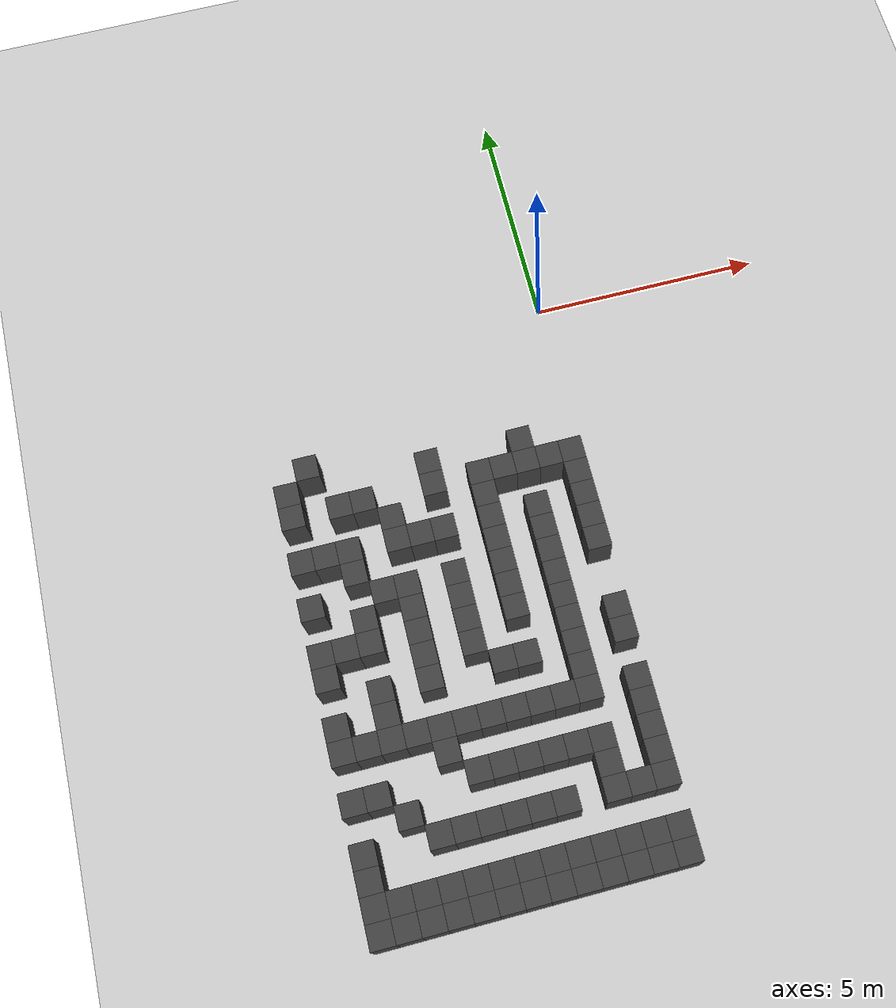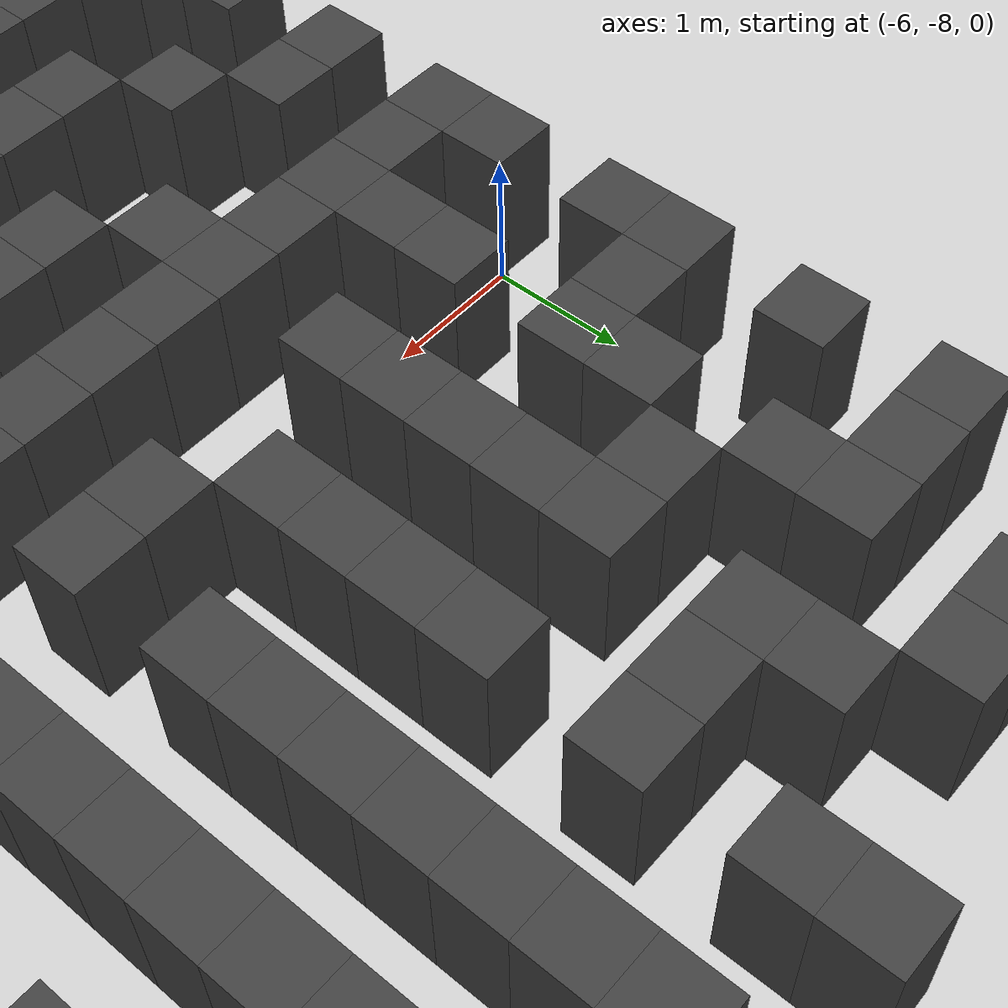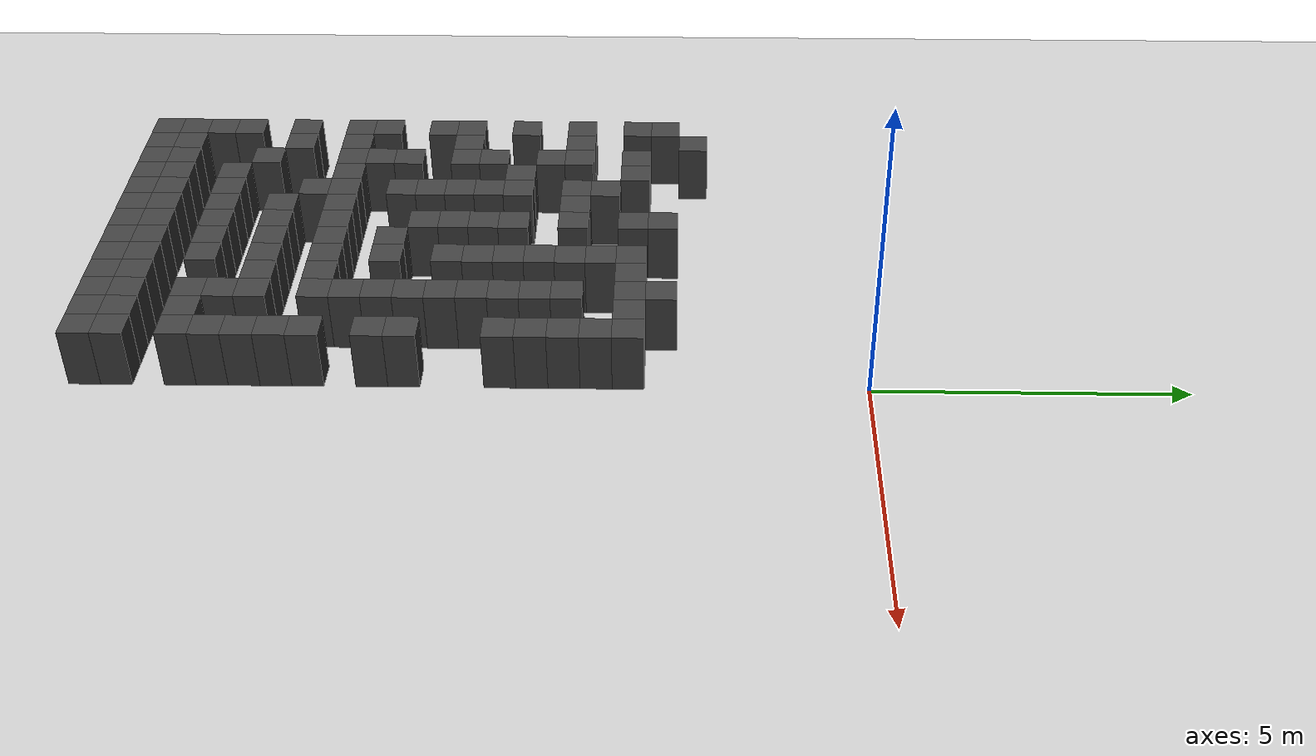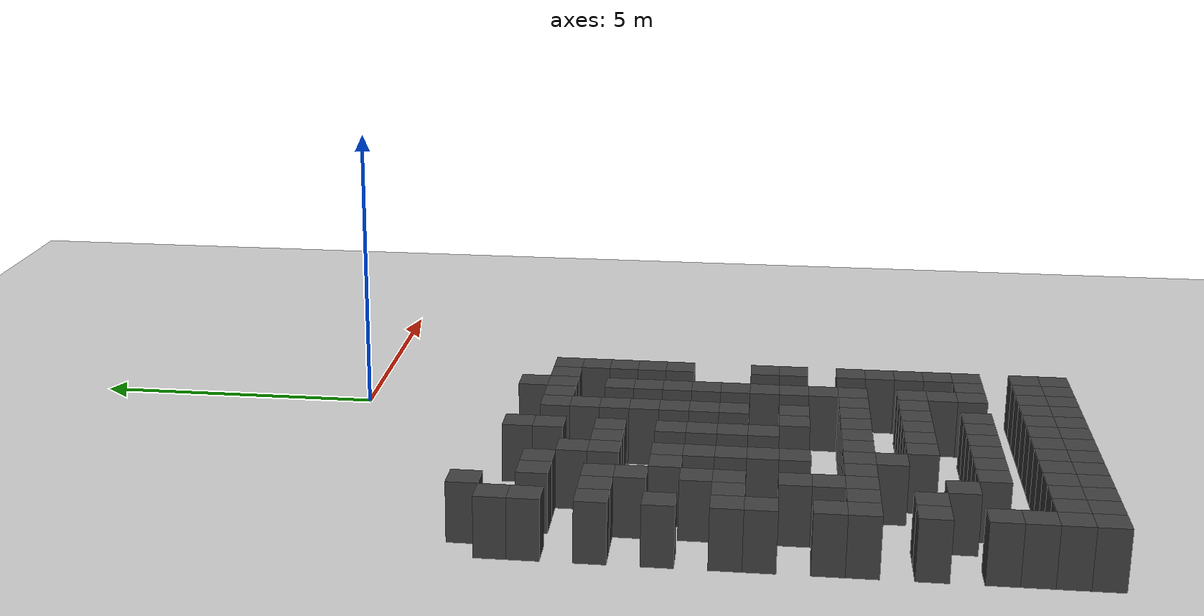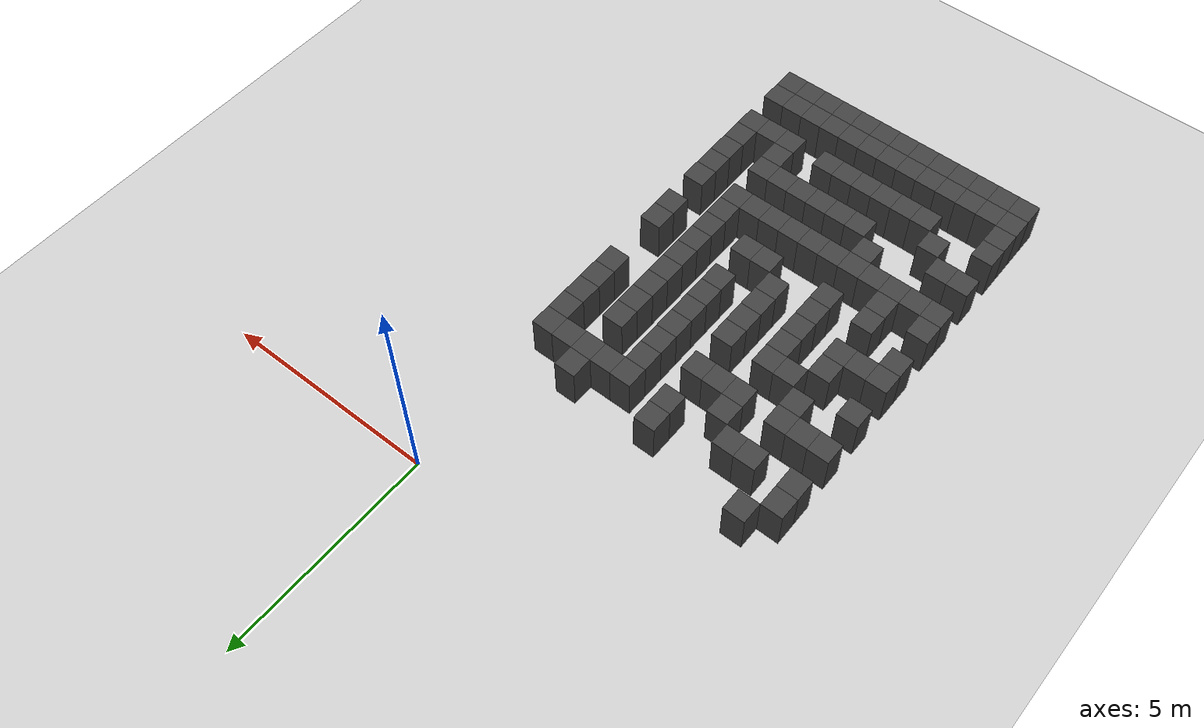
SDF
<sdf version="1.7">
 <world name="map_16783">
  <model name="ground_plane">
   <static>true</static>
   <link name="link">
    <collision name="collision">
     <geometry><plane><normal>0 0 1</normal><size>200 200</size></plane></geometry>
    </collision>
    <visual name="visual">
     <geometry><plane><normal>0 0 1</normal><size>200 200</size></plane></geometry>
     <material><ambient>0.8 0.8 0.8 1</ambient><diffuse>0.8 0.8 0.8 1</diffuse></material>
    </visual>
   </link>
  </model>
  <model name="maze_environment">
   <static>true</static>
   <link name="wall_731">
    <pose>-5.750 -2.750 0.500 0 0 0</pose>
    <collision name="col"><geometry><box><size>0.5 0.5 1.0</size></box></geometry></collision>
    <visual name="vis">
     <geometry><box><size>0.5 0.5 1.0</size></box></geometry>
     <material><ambient>0.15 0.15 0.15 1</ambient><diffuse>0.25 0.25 0.25 1</diffuse></material>
    </visual>
   </link>
   <link name="wall_758">
    <pose>-6.250 -3.250 0.500 0 0 0</pose>
    <collision name="col"><geometry><box><size>0.5 0.5 1.0</size></box></geometry></collision>
    <visual name="vis">
     <geometry><box><size>0.5 0.5 1.0</size></box></geometry>
     <material><ambient>0.15 0.15 0.15 1</ambient><diffuse>0.25 0.25 0.25 1</diffuse></material>
    </visual>
   </link>
   <link name="wall_759">
    <pose>-3.250 -3.250 0.500 0 0 0</pose>
    <collision name="col"><geometry><box><size>0.5 0.5 1.0</size></box></geometry></collision>
    <visual name="vis">
     <geometry><box><size>0.5 0.5 1.0</size></box></geometry>
     <material><ambient>0.15 0.15 0.15 1</ambient><diffuse>0.25 0.25 0.25 1</diffuse></material>
    </visual>
   </link>
   <link name="wall_760">
    <pose>-1.250 -3.250 0.500 0 0 0</pose>
    <collision name="col"><geometry><box><size>0.5 0.5 1.0</size></box></geometry></collision>
    <visual name="vis">
     <geometry><box><size>0.5 0.5 1.0</size></box></geometry>
     <material><ambient>0.15 0.15 0.15 1</ambient><diffuse>0.25 0.25 0.25 1</diffuse></material>
    </visual>
   </link>
   <link name="wall_777">
    <pose>-6.250 -3.750 0.500 0 0 0</pose>
    <collision name="col"><geometry><box><size>0.5 0.5 1.0</size></box></geometry></collision>
    <visual name="vis">
     <geometry><box><size>0.5 0.5 1.0</size></box></geometry>
     <material><ambient>0.15 0.15 0.15 1</ambient><diffuse>0.25 0.25 0.25 1</diffuse></material>
    </visual>
   </link>
   <link name="wall_778">
    <pose>-5.250 -3.750 0.500 0 0 0</pose>
    <collision name="col"><geometry><box><size>0.5 0.5 1.0</size></box></geometry></collision>
    <visual name="vis">
     <geometry><box><size>0.5 0.5 1.0</size></box></geometry>
     <material><ambient>0.15 0.15 0.15 1</ambient><diffuse>0.25 0.25 0.25 1</diffuse></material>
    </visual>
   </link>
   <link name="wall_779">
    <pose>-4.750 -3.750 0.500 0 0 0</pose>
    <collision name="col"><geometry><box><size>0.5 0.5 1.0</size></box></geometry></collision>
    <visual name="vis">
     <geometry><box><size>0.5 0.5 1.0</size></box></geometry>
     <material><ambient>0.15 0.15 0.15 1</ambient><diffuse>0.25 0.25 0.25 1</diffuse></material>
    </visual>
   </link>
   <link name="wall_780">
    <pose>-3.250 -3.750 0.500 0 0 0</pose>
    <collision name="col"><geometry><box><size>0.5 0.5 1.0</size></box></geometry></collision>
    <visual name="vis">
     <geometry><box><size>0.5 0.5 1.0</size></box></geometry>
     <material><ambient>0.15 0.15 0.15 1</ambient><diffuse>0.25 0.25 0.25 1</diffuse></material>
    </visual>
   </link>
   <link name="wall_781">
    <pose>-2.250 -3.750 0.500 0 0 0</pose>
    <collision name="col"><geometry><box><size>0.5 0.5 1.0</size></box></geometry></collision>
    <visual name="vis">
     <geometry><box><size>0.5 0.5 1.0</size></box></geometry>
     <material><ambient>0.15 0.15 0.15 1</ambient><diffuse>0.25 0.25 0.25 1</diffuse></material>
    </visual>
   </link>
   <link name="wall_782">
    <pose>-1.750 -3.750 0.500 0 0 0</pose>
    <collision name="col"><geometry><box><size>0.5 0.5 1.0</size></box></geometry></collision>
    <visual name="vis">
     <geometry><box><size>0.5 0.5 1.0</size></box></geometry>
     <material><ambient>0.15 0.15 0.15 1</ambient><diffuse>0.25 0.25 0.25 1</diffuse></material>
    </visual>
   </link>
   <link name="wall_783">
    <pose>-1.250 -3.750 0.500 0 0 0</pose>
    <collision name="col"><geometry><box><size>0.5 0.5 1.0</size></box></geometry></collision>
    <visual name="vis">
     <geometry><box><size>0.5 0.5 1.0</size></box></geometry>
     <material><ambient>0.15 0.15 0.15 1</ambient><diffuse>0.25 0.25 0.25 1</diffuse></material>
    </visual>
   </link>
   <link name="wall_784">
    <pose>-0.750 -3.750 0.500 0 0 0</pose>
    <collision name="col"><geometry><box><size>0.5 0.5 1.0</size></box></geometry></collision>
    <visual name="vis">
     <geometry><box><size>0.5 0.5 1.0</size></box></geometry>
     <material><ambient>0.15 0.15 0.15 1</ambient><diffuse>0.25 0.25 0.25 1</diffuse></material>
    </visual>
   </link>
   <link name="wall_785">
    <pose>-0.250 -3.750 0.500 0 0 0</pose>
    <collision name="col"><geometry><box><size>0.5 0.5 1.0</size></box></geometry></collision>
    <visual name="vis">
     <geometry><box><size>0.5 0.5 1.0</size></box></geometry>
     <material><ambient>0.15 0.15 0.15 1</ambient><diffuse>0.25 0.25 0.25 1</diffuse></material>
    </visual>
   </link>
   <link name="wall_805">
    <pose>-4.250 -4.250 0.500 0 0 0</pose>
    <collision name="col"><geometry><box><size>0.5 0.5 1.0</size></box></geometry></collision>
    <visual name="vis">
     <geometry><box><size>0.5 0.5 1.0</size></box></geometry>
     <material><ambient>0.15 0.15 0.15 1</ambient><diffuse>0.25 0.25 0.25 1</diffuse></material>
    </visual>
   </link>
   <link name="wall_806">
    <pose>-2.250 -4.250 0.500 0 0 0</pose>
    <collision name="col"><geometry><box><size>0.5 0.5 1.0</size></box></geometry></collision>
    <visual name="vis">
     <geometry><box><size>0.5 0.5 1.0</size></box></geometry>
     <material><ambient>0.15 0.15 0.15 1</ambient><diffuse>0.25 0.25 0.25 1</diffuse></material>
    </visual>
   </link>
   <link name="wall_807">
    <pose>-0.250 -4.250 0.500 0 0 0</pose>
    <collision name="col"><geometry><box><size>0.5 0.5 1.0</size></box></geometry></collision>
    <visual name="vis">
     <geometry><box><size>0.5 0.5 1.0</size></box></geometry>
     <material><ambient>0.15 0.15 0.15 1</ambient><diffuse>0.25 0.25 0.25 1</diffuse></material>
    </visual>
   </link>
   <link name="wall_825">
    <pose>-6.250 -4.750 0.500 0 0 0</pose>
    <collision name="col"><geometry><box><size>0.5 0.5 1.0</size></box></geometry></collision>
    <visual name="vis">
     <geometry><box><size>0.5 0.5 1.0</size></box></geometry>
     <material><ambient>0.15 0.15 0.15 1</ambient><diffuse>0.25 0.25 0.25 1</diffuse></material>
    </visual>
   </link>
   <link name="wall_826">
    <pose>-5.750 -4.750 0.500 0 0 0</pose>
    <collision name="col"><geometry><box><size>0.5 0.5 1.0</size></box></geometry></collision>
    <visual name="vis">
     <geometry><box><size>0.5 0.5 1.0</size></box></geometry>
     <material><ambient>0.15 0.15 0.15 1</ambient><diffuse>0.25 0.25 0.25 1</diffuse></material>
    </visual>
   </link>
   <link name="wall_827">
    <pose>-5.250 -4.750 0.500 0 0 0</pose>
    <collision name="col"><geometry><box><size>0.5 0.5 1.0</size></box></geometry></collision>
    <visual name="vis">
     <geometry><box><size>0.5 0.5 1.0</size></box></geometry>
     <material><ambient>0.15 0.15 0.15 1</ambient><diffuse>0.25 0.25 0.25 1</diffuse></material>
    </visual>
   </link>
   <link name="wall_828">
    <pose>-4.250 -4.750 0.500 0 0 0</pose>
    <collision name="col"><geometry><box><size>0.5 0.5 1.0</size></box></geometry></collision>
    <visual name="vis">
     <geometry><box><size>0.5 0.5 1.0</size></box></geometry>
     <material><ambient>0.15 0.15 0.15 1</ambient><diffuse>0.25 0.25 0.25 1</diffuse></material>
    </visual>
   </link>
   <link name="wall_829">
    <pose>-3.750 -4.750 0.500 0 0 0</pose>
    <collision name="col"><geometry><box><size>0.5 0.5 1.0</size></box></geometry></collision>
    <visual name="vis">
     <geometry><box><size>0.5 0.5 1.0</size></box></geometry>
     <material><ambient>0.15 0.15 0.15 1</ambient><diffuse>0.25 0.25 0.25 1</diffuse></material>
    </visual>
   </link>
   <link name="wall_830">
    <pose>-3.250 -4.750 0.500 0 0 0</pose>
    <collision name="col"><geometry><box><size>0.5 0.5 1.0</size></box></geometry></collision>
    <visual name="vis">
     <geometry><box><size>0.5 0.5 1.0</size></box></geometry>
     <material><ambient>0.15 0.15 0.15 1</ambient><diffuse>0.25 0.25 0.25 1</diffuse></material>
    </visual>
   </link>
   <link name="wall_831">
    <pose>-2.250 -4.750 0.500 0 0 0</pose>
    <collision name="col"><geometry><box><size>0.5 0.5 1.0</size></box></geometry></collision>
    <visual name="vis">
     <geometry><box><size>0.5 0.5 1.0</size></box></geometry>
     <material><ambient>0.15 0.15 0.15 1</ambient><diffuse>0.25 0.25 0.25 1</diffuse></material>
    </visual>
   </link>
   <link name="wall_832">
    <pose>-1.250 -4.750 0.500 0 0 0</pose>
    <collision name="col"><geometry><box><size>0.5 0.5 1.0</size></box></geometry></collision>
    <visual name="vis">
     <geometry><box><size>0.5 0.5 1.0</size></box></geometry>
     <material><ambient>0.15 0.15 0.15 1</ambient><diffuse>0.25 0.25 0.25 1</diffuse></material>
    </visual>
   </link>
   <link name="wall_833">
    <pose>-0.250 -4.750 0.500 0 0 0</pose>
    <collision name="col"><geometry><box><size>0.5 0.5 1.0</size></box></geometry></collision>
    <visual name="vis">
     <geometry><box><size>0.5 0.5 1.0</size></box></geometry>
     <material><ambient>0.15 0.15 0.15 1</ambient><diffuse>0.25 0.25 0.25 1</diffuse></material>
    </visual>
   </link>
   <link name="wall_853">
    <pose>-5.250 -5.250 0.500 0 0 0</pose>
    <collision name="col"><geometry><box><size>0.5 0.5 1.0</size></box></geometry></collision>
    <visual name="vis">
     <geometry><box><size>0.5 0.5 1.0</size></box></geometry>
     <material><ambient>0.15 0.15 0.15 1</ambient><diffuse>0.25 0.25 0.25 1</diffuse></material>
    </visual>
   </link>
   <link name="wall_854">
    <pose>-2.250 -5.250 0.500 0 0 0</pose>
    <collision name="col"><geometry><box><size>0.5 0.5 1.0</size></box></geometry></collision>
    <visual name="vis">
     <geometry><box><size>0.5 0.5 1.0</size></box></geometry>
     <material><ambient>0.15 0.15 0.15 1</ambient><diffuse>0.25 0.25 0.25 1</diffuse></material>
    </visual>
   </link>
   <link name="wall_855">
    <pose>-1.250 -5.250 0.500 0 0 0</pose>
    <collision name="col"><geometry><box><size>0.5 0.5 1.0</size></box></geometry></collision>
    <visual name="vis">
     <geometry><box><size>0.5 0.5 1.0</size></box></geometry>
     <material><ambient>0.15 0.15 0.15 1</ambient><diffuse>0.25 0.25 0.25 1</diffuse></material>
    </visual>
   </link>
   <link name="wall_856">
    <pose>-0.250 -5.250 0.500 0 0 0</pose>
    <collision name="col"><geometry><box><size>0.5 0.5 1.0</size></box></geometry></collision>
    <visual name="vis">
     <geometry><box><size>0.5 0.5 1.0</size></box></geometry>
     <material><ambient>0.15 0.15 0.15 1</ambient><diffuse>0.25 0.25 0.25 1</diffuse></material>
    </visual>
   </link>
   <link name="wall_873">
    <pose>-6.250 -5.750 0.500 0 0 0</pose>
    <collision name="col"><geometry><box><size>0.5 0.5 1.0</size></box></geometry></collision>
    <visual name="vis">
     <geometry><box><size>0.5 0.5 1.0</size></box></geometry>
     <material><ambient>0.15 0.15 0.15 1</ambient><diffuse>0.25 0.25 0.25 1</diffuse></material>
    </visual>
   </link>
   <link name="wall_874">
    <pose>-4.750 -5.750 0.500 0 0 0</pose>
    <collision name="col"><geometry><box><size>0.5 0.5 1.0</size></box></geometry></collision>
    <visual name="vis">
     <geometry><box><size>0.5 0.5 1.0</size></box></geometry>
     <material><ambient>0.15 0.15 0.15 1</ambient><diffuse>0.25 0.25 0.25 1</diffuse></material>
    </visual>
   </link>
   <link name="wall_875">
    <pose>-4.250 -5.750 0.500 0 0 0</pose>
    <collision name="col"><geometry><box><size>0.5 0.5 1.0</size></box></geometry></collision>
    <visual name="vis">
     <geometry><box><size>0.5 0.5 1.0</size></box></geometry>
     <material><ambient>0.15 0.15 0.15 1</ambient><diffuse>0.25 0.25 0.25 1</diffuse></material>
    </visual>
   </link>
   <link name="wall_876">
    <pose>-3.250 -5.750 0.500 0 0 0</pose>
    <collision name="col"><geometry><box><size>0.5 0.5 1.0</size></box></geometry></collision>
    <visual name="vis">
     <geometry><box><size>0.5 0.5 1.0</size></box></geometry>
     <material><ambient>0.15 0.15 0.15 1</ambient><diffuse>0.25 0.25 0.25 1</diffuse></material>
    </visual>
   </link>
   <link name="wall_877">
    <pose>-2.250 -5.750 0.500 0 0 0</pose>
    <collision name="col"><geometry><box><size>0.5 0.5 1.0</size></box></geometry></collision>
    <visual name="vis">
     <geometry><box><size>0.5 0.5 1.0</size></box></geometry>
     <material><ambient>0.15 0.15 0.15 1</ambient><diffuse>0.25 0.25 0.25 1</diffuse></material>
    </visual>
   </link>
   <link name="wall_878">
    <pose>-1.250 -5.750 0.500 0 0 0</pose>
    <collision name="col"><geometry><box><size>0.5 0.5 1.0</size></box></geometry></collision>
    <visual name="vis">
     <geometry><box><size>0.5 0.5 1.0</size></box></geometry>
     <material><ambient>0.15 0.15 0.15 1</ambient><diffuse>0.25 0.25 0.25 1</diffuse></material>
    </visual>
   </link>
   <link name="wall_879">
    <pose>-0.250 -5.750 0.500 0 0 0</pose>
    <collision name="col"><geometry><box><size>0.5 0.5 1.0</size></box></geometry></collision>
    <visual name="vis">
     <geometry><box><size>0.5 0.5 1.0</size></box></geometry>
     <material><ambient>0.15 0.15 0.15 1</ambient><diffuse>0.25 0.25 0.25 1</diffuse></material>
    </visual>
   </link>
   <link name="wall_903">
    <pose>-5.250 -6.250 0.500 0 0 0</pose>
    <collision name="col"><geometry><box><size>0.5 0.5 1.0</size></box></geometry></collision>
    <visual name="vis">
     <geometry><box><size>0.5 0.5 1.0</size></box></geometry>
     <material><ambient>0.15 0.15 0.15 1</ambient><diffuse>0.25 0.25 0.25 1</diffuse></material>
    </visual>
   </link>
   <link name="wall_904">
    <pose>-4.250 -6.250 0.500 0 0 0</pose>
    <collision name="col"><geometry><box><size>0.5 0.5 1.0</size></box></geometry></collision>
    <visual name="vis">
     <geometry><box><size>0.5 0.5 1.0</size></box></geometry>
     <material><ambient>0.15 0.15 0.15 1</ambient><diffuse>0.25 0.25 0.25 1</diffuse></material>
    </visual>
   </link>
   <link name="wall_905">
    <pose>-3.250 -6.250 0.500 0 0 0</pose>
    <collision name="col"><geometry><box><size>0.5 0.5 1.0</size></box></geometry></collision>
    <visual name="vis">
     <geometry><box><size>0.5 0.5 1.0</size></box></geometry>
     <material><ambient>0.15 0.15 0.15 1</ambient><diffuse>0.25 0.25 0.25 1</diffuse></material>
    </visual>
   </link>
   <link name="wall_906">
    <pose>-2.250 -6.250 0.500 0 0 0</pose>
    <collision name="col"><geometry><box><size>0.5 0.5 1.0</size></box></geometry></collision>
    <visual name="vis">
     <geometry><box><size>0.5 0.5 1.0</size></box></geometry>
     <material><ambient>0.15 0.15 0.15 1</ambient><diffuse>0.25 0.25 0.25 1</diffuse></material>
    </visual>
   </link>
   <link name="wall_907">
    <pose>-1.250 -6.250 0.500 0 0 0</pose>
    <collision name="col"><geometry><box><size>0.5 0.5 1.0</size></box></geometry></collision>
    <visual name="vis">
     <geometry><box><size>0.5 0.5 1.0</size></box></geometry>
     <material><ambient>0.15 0.15 0.15 1</ambient><diffuse>0.25 0.25 0.25 1</diffuse></material>
    </visual>
   </link>
   <link name="wall_920">
    <pose>-6.250 -6.750 0.500 0 0 0</pose>
    <collision name="col"><geometry><box><size>0.5 0.5 1.0</size></box></geometry></collision>
    <visual name="vis">
     <geometry><box><size>0.5 0.5 1.0</size></box></geometry>
     <material><ambient>0.15 0.15 0.15 1</ambient><diffuse>0.25 0.25 0.25 1</diffuse></material>
    </visual>
   </link>
   <link name="wall_921">
    <pose>-5.750 -6.750 0.500 0 0 0</pose>
    <collision name="col"><geometry><box><size>0.5 0.5 1.0</size></box></geometry></collision>
    <visual name="vis">
     <geometry><box><size>0.5 0.5 1.0</size></box></geometry>
     <material><ambient>0.15 0.15 0.15 1</ambient><diffuse>0.25 0.25 0.25 1</diffuse></material>
    </visual>
   </link>
   <link name="wall_922">
    <pose>-5.250 -6.750 0.500 0 0 0</pose>
    <collision name="col"><geometry><box><size>0.5 0.5 1.0</size></box></geometry></collision>
    <visual name="vis">
     <geometry><box><size>0.5 0.5 1.0</size></box></geometry>
     <material><ambient>0.15 0.15 0.15 1</ambient><diffuse>0.25 0.25 0.25 1</diffuse></material>
    </visual>
   </link>
   <link name="wall_923">
    <pose>-4.250 -6.750 0.500 0 0 0</pose>
    <collision name="col"><geometry><box><size>0.5 0.5 1.0</size></box></geometry></collision>
    <visual name="vis">
     <geometry><box><size>0.5 0.5 1.0</size></box></geometry>
     <material><ambient>0.15 0.15 0.15 1</ambient><diffuse>0.25 0.25 0.25 1</diffuse></material>
    </visual>
   </link>
   <link name="wall_924">
    <pose>-3.250 -6.750 0.500 0 0 0</pose>
    <collision name="col"><geometry><box><size>0.5 0.5 1.0</size></box></geometry></collision>
    <visual name="vis">
     <geometry><box><size>0.5 0.5 1.0</size></box></geometry>
     <material><ambient>0.15 0.15 0.15 1</ambient><diffuse>0.25 0.25 0.25 1</diffuse></material>
    </visual>
   </link>
   <link name="wall_925">
    <pose>-2.250 -6.750 0.500 0 0 0</pose>
    <collision name="col"><geometry><box><size>0.5 0.5 1.0</size></box></geometry></collision>
    <visual name="vis">
     <geometry><box><size>0.5 0.5 1.0</size></box></geometry>
     <material><ambient>0.15 0.15 0.15 1</ambient><diffuse>0.25 0.25 0.25 1</diffuse></material>
    </visual>
   </link>
   <link name="wall_926">
    <pose>-1.250 -6.750 0.500 0 0 0</pose>
    <collision name="col"><geometry><box><size>0.5 0.5 1.0</size></box></geometry></collision>
    <visual name="vis">
     <geometry><box><size>0.5 0.5 1.0</size></box></geometry>
     <material><ambient>0.15 0.15 0.15 1</ambient><diffuse>0.25 0.25 0.25 1</diffuse></material>
    </visual>
   </link>
   <link name="wall_952">
    <pose>-6.250 -7.250 0.500 0 0 0</pose>
    <collision name="col"><geometry><box><size>0.5 0.5 1.0</size></box></geometry></collision>
    <visual name="vis">
     <geometry><box><size>0.5 0.5 1.0</size></box></geometry>
     <material><ambient>0.15 0.15 0.15 1</ambient><diffuse>0.25 0.25 0.25 1</diffuse></material>
    </visual>
   </link>
   <link name="wall_953">
    <pose>-4.250 -7.250 0.500 0 0 0</pose>
    <collision name="col"><geometry><box><size>0.5 0.5 1.0</size></box></geometry></collision>
    <visual name="vis">
     <geometry><box><size>0.5 0.5 1.0</size></box></geometry>
     <material><ambient>0.15 0.15 0.15 1</ambient><diffuse>0.25 0.25 0.25 1</diffuse></material>
    </visual>
   </link>
   <link name="wall_954">
    <pose>-3.250 -7.250 0.500 0 0 0</pose>
    <collision name="col"><geometry><box><size>0.5 0.5 1.0</size></box></geometry></collision>
    <visual name="vis">
     <geometry><box><size>0.5 0.5 1.0</size></box></geometry>
     <material><ambient>0.15 0.15 0.15 1</ambient><diffuse>0.25 0.25 0.25 1</diffuse></material>
    </visual>
   </link>
   <link name="wall_955">
    <pose>-1.250 -7.250 0.500 0 0 0</pose>
    <collision name="col"><geometry><box><size>0.5 0.5 1.0</size></box></geometry></collision>
    <visual name="vis">
     <geometry><box><size>0.5 0.5 1.0</size></box></geometry>
     <material><ambient>0.15 0.15 0.15 1</ambient><diffuse>0.25 0.25 0.25 1</diffuse></material>
    </visual>
   </link>
   <link name="wall_956">
    <pose>-0.250 -7.250 0.500 0 0 0</pose>
    <collision name="col"><geometry><box><size>0.5 0.5 1.0</size></box></geometry></collision>
    <visual name="vis">
     <geometry><box><size>0.5 0.5 1.0</size></box></geometry>
     <material><ambient>0.15 0.15 0.15 1</ambient><diffuse>0.25 0.25 0.25 1</diffuse></material>
    </visual>
   </link>
   <link name="wall_969">
    <pose>-5.250 -7.750 0.500 0 0 0</pose>
    <collision name="col"><geometry><box><size>0.5 0.5 1.0</size></box></geometry></collision>
    <visual name="vis">
     <geometry><box><size>0.5 0.5 1.0</size></box></geometry>
     <material><ambient>0.15 0.15 0.15 1</ambient><diffuse>0.25 0.25 0.25 1</diffuse></material>
    </visual>
   </link>
   <link name="wall_970">
    <pose>-4.250 -7.750 0.500 0 0 0</pose>
    <collision name="col"><geometry><box><size>0.5 0.5 1.0</size></box></geometry></collision>
    <visual name="vis">
     <geometry><box><size>0.5 0.5 1.0</size></box></geometry>
     <material><ambient>0.15 0.15 0.15 1</ambient><diffuse>0.25 0.25 0.25 1</diffuse></material>
    </visual>
   </link>
   <link name="wall_971">
    <pose>-2.750 -7.750 0.500 0 0 0</pose>
    <collision name="col"><geometry><box><size>0.5 0.5 1.0</size></box></geometry></collision>
    <visual name="vis">
     <geometry><box><size>0.5 0.5 1.0</size></box></geometry>
     <material><ambient>0.15 0.15 0.15 1</ambient><diffuse>0.25 0.25 0.25 1</diffuse></material>
    </visual>
   </link>
   <link name="wall_972">
    <pose>-2.250 -7.750 0.500 0 0 0</pose>
    <collision name="col"><geometry><box><size>0.5 0.5 1.0</size></box></geometry></collision>
    <visual name="vis">
     <geometry><box><size>0.5 0.5 1.0</size></box></geometry>
     <material><ambient>0.15 0.15 0.15 1</ambient><diffuse>0.25 0.25 0.25 1</diffuse></material>
    </visual>
   </link>
   <link name="wall_973">
    <pose>-1.250 -7.750 0.500 0 0 0</pose>
    <collision name="col"><geometry><box><size>0.5 0.5 1.0</size></box></geometry></collision>
    <visual name="vis">
     <geometry><box><size>0.5 0.5 1.0</size></box></geometry>
     <material><ambient>0.15 0.15 0.15 1</ambient><diffuse>0.25 0.25 0.25 1</diffuse></material>
    </visual>
   </link>
   <link name="wall_974">
    <pose>-0.250 -7.750 0.500 0 0 0</pose>
    <collision name="col"><geometry><box><size>0.5 0.5 1.0</size></box></geometry></collision>
    <visual name="vis">
     <geometry><box><size>0.5 0.5 1.0</size></box></geometry>
     <material><ambient>0.15 0.15 0.15 1</ambient><diffuse>0.25 0.25 0.25 1</diffuse></material>
    </visual>
   </link>
   <link name="wall_997">
    <pose>-6.250 -8.250 0.500 0 0 0</pose>
    <collision name="col"><geometry><box><size>0.5 0.5 1.0</size></box></geometry></collision>
    <visual name="vis">
     <geometry><box><size>0.5 0.5 1.0</size></box></geometry>
     <material><ambient>0.15 0.15 0.15 1</ambient><diffuse>0.25 0.25 0.25 1</diffuse></material>
    </visual>
   </link>
   <link name="wall_998">
    <pose>-5.250 -8.250 0.500 0 0 0</pose>
    <collision name="col"><geometry><box><size>0.5 0.5 1.0</size></box></geometry></collision>
    <visual name="vis">
     <geometry><box><size>0.5 0.5 1.0</size></box></geometry>
     <material><ambient>0.15 0.15 0.15 1</ambient><diffuse>0.25 0.25 0.25 1</diffuse></material>
    </visual>
   </link>
   <link name="wall_999">
    <pose>-1.250 -8.250 0.500 0 0 0</pose>
    <collision name="col"><geometry><box><size>0.5 0.5 1.0</size></box></geometry></collision>
    <visual name="vis">
     <geometry><box><size>0.5 0.5 1.0</size></box></geometry>
     <material><ambient>0.15 0.15 0.15 1</ambient><diffuse>0.25 0.25 0.25 1</diffuse></material>
    </visual>
   </link>
   <link name="wall_1016">
    <pose>-6.250 -8.750 0.500 0 0 0</pose>
    <collision name="col"><geometry><box><size>0.5 0.5 1.0</size></box></geometry></collision>
    <visual name="vis">
     <geometry><box><size>0.5 0.5 1.0</size></box></geometry>
     <material><ambient>0.15 0.15 0.15 1</ambient><diffuse>0.25 0.25 0.25 1</diffuse></material>
    </visual>
   </link>
   <link name="wall_1017">
    <pose>-5.750 -8.750 0.500 0 0 0</pose>
    <collision name="col"><geometry><box><size>0.5 0.5 1.0</size></box></geometry></collision>
    <visual name="vis">
     <geometry><box><size>0.5 0.5 1.0</size></box></geometry>
     <material><ambient>0.15 0.15 0.15 1</ambient><diffuse>0.25 0.25 0.25 1</diffuse></material>
    </visual>
   </link>
   <link name="wall_1018">
    <pose>-5.250 -8.750 0.500 0 0 0</pose>
    <collision name="col"><geometry><box><size>0.5 0.5 1.0</size></box></geometry></collision>
    <visual name="vis">
     <geometry><box><size>0.5 0.5 1.0</size></box></geometry>
     <material><ambient>0.15 0.15 0.15 1</ambient><diffuse>0.25 0.25 0.25 1</diffuse></material>
    </visual>
   </link>
   <link name="wall_1019">
    <pose>-4.750 -8.750 0.500 0 0 0</pose>
    <collision name="col"><geometry><box><size>0.5 0.5 1.0</size></box></geometry></collision>
    <visual name="vis">
     <geometry><box><size>0.5 0.5 1.0</size></box></geometry>
     <material><ambient>0.15 0.15 0.15 1</ambient><diffuse>0.25 0.25 0.25 1</diffuse></material>
    </visual>
   </link>
   <link name="wall_1020">
    <pose>-4.250 -8.750 0.500 0 0 0</pose>
    <collision name="col"><geometry><box><size>0.5 0.5 1.0</size></box></geometry></collision>
    <visual name="vis">
     <geometry><box><size>0.5 0.5 1.0</size></box></geometry>
     <material><ambient>0.15 0.15 0.15 1</ambient><diffuse>0.25 0.25 0.25 1</diffuse></material>
    </visual>
   </link>
   <link name="wall_1021">
    <pose>-3.750 -8.750 0.500 0 0 0</pose>
    <collision name="col"><geometry><box><size>0.5 0.5 1.0</size></box></geometry></collision>
    <visual name="vis">
     <geometry><box><size>0.5 0.5 1.0</size></box></geometry>
     <material><ambient>0.15 0.15 0.15 1</ambient><diffuse>0.25 0.25 0.25 1</diffuse></material>
    </visual>
   </link>
   <link name="wall_1022">
    <pose>-3.250 -8.750 0.500 0 0 0</pose>
    <collision name="col"><geometry><box><size>0.5 0.5 1.0</size></box></geometry></collision>
    <visual name="vis">
     <geometry><box><size>0.5 0.5 1.0</size></box></geometry>
     <material><ambient>0.15 0.15 0.15 1</ambient><diffuse>0.25 0.25 0.25 1</diffuse></material>
    </visual>
   </link>
   <link name="wall_1023">
    <pose>-2.750 -8.750 0.500 0 0 0</pose>
    <collision name="col"><geometry><box><size>0.5 0.5 1.0</size></box></geometry></collision>
    <visual name="vis">
     <geometry><box><size>0.5 0.5 1.0</size></box></geometry>
     <material><ambient>0.15 0.15 0.15 1</ambient><diffuse>0.25 0.25 0.25 1</diffuse></material>
    </visual>
   </link>
   <link name="wall_1024">
    <pose>-2.250 -8.750 0.500 0 0 0</pose>
    <collision name="col"><geometry><box><size>0.5 0.5 1.0</size></box></geometry></collision>
    <visual name="vis">
     <geometry><box><size>0.5 0.5 1.0</size></box></geometry>
     <material><ambient>0.15 0.15 0.15 1</ambient><diffuse>0.25 0.25 0.25 1</diffuse></material>
    </visual>
   </link>
   <link name="wall_1025">
    <pose>-1.750 -8.750 0.500 0 0 0</pose>
    <collision name="col"><geometry><box><size>0.5 0.5 1.0</size></box></geometry></collision>
    <visual name="vis">
     <geometry><box><size>0.5 0.5 1.0</size></box></geometry>
     <material><ambient>0.15 0.15 0.15 1</ambient><diffuse>0.25 0.25 0.25 1</diffuse></material>
    </visual>
   </link>
   <link name="wall_1026">
    <pose>-1.250 -8.750 0.500 0 0 0</pose>
    <collision name="col"><geometry><box><size>0.5 0.5 1.0</size></box></geometry></collision>
    <visual name="vis">
     <geometry><box><size>0.5 0.5 1.0</size></box></geometry>
     <material><ambient>0.15 0.15 0.15 1</ambient><diffuse>0.25 0.25 0.25 1</diffuse></material>
    </visual>
   </link>
   <link name="wall_1027">
    <pose>-0.250 -8.750 0.500 0 0 0</pose>
    <collision name="col"><geometry><box><size>0.5 0.5 1.0</size></box></geometry></collision>
    <visual name="vis">
     <geometry><box><size>0.5 0.5 1.0</size></box></geometry>
     <material><ambient>0.15 0.15 0.15 1</ambient><diffuse>0.25 0.25 0.25 1</diffuse></material>
    </visual>
   </link>
   <link name="wall_1049">
    <pose>-4.250 -9.250 0.500 0 0 0</pose>
    <collision name="col"><geometry><box><size>0.5 0.5 1.0</size></box></geometry></collision>
    <visual name="vis">
     <geometry><box><size>0.5 0.5 1.0</size></box></geometry>
     <material><ambient>0.15 0.15 0.15 1</ambient><diffuse>0.25 0.25 0.25 1</diffuse></material>
    </visual>
   </link>
   <link name="wall_1050">
    <pose>-0.250 -9.250 0.500 0 0 0</pose>
    <collision name="col"><geometry><box><size>0.5 0.5 1.0</size></box></geometry></collision>
    <visual name="vis">
     <geometry><box><size>0.5 0.5 1.0</size></box></geometry>
     <material><ambient>0.15 0.15 0.15 1</ambient><diffuse>0.25 0.25 0.25 1</diffuse></material>
    </visual>
   </link>
   <link name="wall_1069">
    <pose>-6.250 -9.750 0.500 0 0 0</pose>
    <collision name="col"><geometry><box><size>0.5 0.5 1.0</size></box></geometry></collision>
    <visual name="vis">
     <geometry><box><size>0.5 0.5 1.0</size></box></geometry>
     <material><ambient>0.15 0.15 0.15 1</ambient><diffuse>0.25 0.25 0.25 1</diffuse></material>
    </visual>
   </link>
   <link name="wall_1070">
    <pose>-5.750 -9.750 0.500 0 0 0</pose>
    <collision name="col"><geometry><box><size>0.5 0.5 1.0</size></box></geometry></collision>
    <visual name="vis">
     <geometry><box><size>0.5 0.5 1.0</size></box></geometry>
     <material><ambient>0.15 0.15 0.15 1</ambient><diffuse>0.25 0.25 0.25 1</diffuse></material>
    </visual>
   </link>
   <link name="wall_1071">
    <pose>-3.750 -9.750 0.500 0 0 0</pose>
    <collision name="col"><geometry><box><size>0.5 0.5 1.0</size></box></geometry></collision>
    <visual name="vis">
     <geometry><box><size>0.5 0.5 1.0</size></box></geometry>
     <material><ambient>0.15 0.15 0.15 1</ambient><diffuse>0.25 0.25 0.25 1</diffuse></material>
    </visual>
   </link>
   <link name="wall_1072">
    <pose>-3.250 -9.750 0.500 0 0 0</pose>
    <collision name="col"><geometry><box><size>0.5 0.5 1.0</size></box></geometry></collision>
    <visual name="vis">
     <geometry><box><size>0.5 0.5 1.0</size></box></geometry>
     <material><ambient>0.15 0.15 0.15 1</ambient><diffuse>0.25 0.25 0.25 1</diffuse></material>
    </visual>
   </link>
   <link name="wall_1073">
    <pose>-2.750 -9.750 0.500 0 0 0</pose>
    <collision name="col"><geometry><box><size>0.5 0.5 1.0</size></box></geometry></collision>
    <visual name="vis">
     <geometry><box><size>0.5 0.5 1.0</size></box></geometry>
     <material><ambient>0.15 0.15 0.15 1</ambient><diffuse>0.25 0.25 0.25 1</diffuse></material>
    </visual>
   </link>
   <link name="wall_1074">
    <pose>-2.250 -9.750 0.500 0 0 0</pose>
    <collision name="col"><geometry><box><size>0.5 0.5 1.0</size></box></geometry></collision>
    <visual name="vis">
     <geometry><box><size>0.5 0.5 1.0</size></box></geometry>
     <material><ambient>0.15 0.15 0.15 1</ambient><diffuse>0.25 0.25 0.25 1</diffuse></material>
    </visual>
   </link>
   <link name="wall_1075">
    <pose>-1.750 -9.750 0.500 0 0 0</pose>
    <collision name="col"><geometry><box><size>0.5 0.5 1.0</size></box></geometry></collision>
    <visual name="vis">
     <geometry><box><size>0.5 0.5 1.0</size></box></geometry>
     <material><ambient>0.15 0.15 0.15 1</ambient><diffuse>0.25 0.25 0.25 1</diffuse></material>
    </visual>
   </link>
   <link name="wall_1076">
    <pose>-1.250 -9.750 0.500 0 0 0</pose>
    <collision name="col"><geometry><box><size>0.5 0.5 1.0</size></box></geometry></collision>
    <visual name="vis">
     <geometry><box><size>0.5 0.5 1.0</size></box></geometry>
     <material><ambient>0.15 0.15 0.15 1</ambient><diffuse>0.25 0.25 0.25 1</diffuse></material>
    </visual>
   </link>
   <link name="wall_1077">
    <pose>-0.250 -9.750 0.500 0 0 0</pose>
    <collision name="col"><geometry><box><size>0.5 0.5 1.0</size></box></geometry></collision>
    <visual name="vis">
     <geometry><box><size>0.5 0.5 1.0</size></box></geometry>
     <material><ambient>0.15 0.15 0.15 1</ambient><diffuse>0.25 0.25 0.25 1</diffuse></material>
    </visual>
   </link>
   <link name="wall_1099">
    <pose>-5.250 -10.250 0.500 0 0 0</pose>
    <collision name="col"><geometry><box><size>0.5 0.5 1.0</size></box></geometry></collision>
    <visual name="vis">
     <geometry><box><size>0.5 0.5 1.0</size></box></geometry>
     <material><ambient>0.15 0.15 0.15 1</ambient><diffuse>0.25 0.25 0.25 1</diffuse></material>
    </visual>
   </link>
   <link name="wall_1100">
    <pose>-1.250 -10.250 0.500 0 0 0</pose>
    <collision name="col"><geometry><box><size>0.5 0.5 1.0</size></box></geometry></collision>
    <visual name="vis">
     <geometry><box><size>0.5 0.5 1.0</size></box></geometry>
     <material><ambient>0.15 0.15 0.15 1</ambient><diffuse>0.25 0.25 0.25 1</diffuse></material>
    </visual>
   </link>
   <link name="wall_1101">
    <pose>-0.250 -10.250 0.500 0 0 0</pose>
    <collision name="col"><geometry><box><size>0.5 0.5 1.0</size></box></geometry></collision>
    <visual name="vis">
     <geometry><box><size>0.5 0.5 1.0</size></box></geometry>
     <material><ambient>0.15 0.15 0.15 1</ambient><diffuse>0.25 0.25 0.25 1</diffuse></material>
    </visual>
   </link>
   <link name="wall_1119">
    <pose>-6.250 -10.750 0.500 0 0 0</pose>
    <collision name="col"><geometry><box><size>0.5 0.5 1.0</size></box></geometry></collision>
    <visual name="vis">
     <geometry><box><size>0.5 0.5 1.0</size></box></geometry>
     <material><ambient>0.15 0.15 0.15 1</ambient><diffuse>0.25 0.25 0.25 1</diffuse></material>
    </visual>
   </link>
   <link name="wall_1120">
    <pose>-4.750 -10.750 0.500 0 0 0</pose>
    <collision name="col"><geometry><box><size>0.5 0.5 1.0</size></box></geometry></collision>
    <visual name="vis">
     <geometry><box><size>0.5 0.5 1.0</size></box></geometry>
     <material><ambient>0.15 0.15 0.15 1</ambient><diffuse>0.25 0.25 0.25 1</diffuse></material>
    </visual>
   </link>
   <link name="wall_1121">
    <pose>-4.250 -10.750 0.500 0 0 0</pose>
    <collision name="col"><geometry><box><size>0.5 0.5 1.0</size></box></geometry></collision>
    <visual name="vis">
     <geometry><box><size>0.5 0.5 1.0</size></box></geometry>
     <material><ambient>0.15 0.15 0.15 1</ambient><diffuse>0.25 0.25 0.25 1</diffuse></material>
    </visual>
   </link>
   <link name="wall_1122">
    <pose>-3.750 -10.750 0.500 0 0 0</pose>
    <collision name="col"><geometry><box><size>0.5 0.5 1.0</size></box></geometry></collision>
    <visual name="vis">
     <geometry><box><size>0.5 0.5 1.0</size></box></geometry>
     <material><ambient>0.15 0.15 0.15 1</ambient><diffuse>0.25 0.25 0.25 1</diffuse></material>
    </visual>
   </link>
   <link name="wall_1123">
    <pose>-3.250 -10.750 0.500 0 0 0</pose>
    <collision name="col"><geometry><box><size>0.5 0.5 1.0</size></box></geometry></collision>
    <visual name="vis">
     <geometry><box><size>0.5 0.5 1.0</size></box></geometry>
     <material><ambient>0.15 0.15 0.15 1</ambient><diffuse>0.25 0.25 0.25 1</diffuse></material>
    </visual>
   </link>
   <link name="wall_1124">
    <pose>-2.750 -10.750 0.500 0 0 0</pose>
    <collision name="col"><geometry><box><size>0.5 0.5 1.0</size></box></geometry></collision>
    <visual name="vis">
     <geometry><box><size>0.5 0.5 1.0</size></box></geometry>
     <material><ambient>0.15 0.15 0.15 1</ambient><diffuse>0.25 0.25 0.25 1</diffuse></material>
    </visual>
   </link>
   <link name="wall_1125">
    <pose>-2.250 -10.750 0.500 0 0 0</pose>
    <collision name="col"><geometry><box><size>0.5 0.5 1.0</size></box></geometry></collision>
    <visual name="vis">
     <geometry><box><size>0.5 0.5 1.0</size></box></geometry>
     <material><ambient>0.15 0.15 0.15 1</ambient><diffuse>0.25 0.25 0.25 1</diffuse></material>
    </visual>
   </link>
   <link name="wall_1126">
    <pose>-1.250 -10.750 0.500 0 0 0</pose>
    <collision name="col"><geometry><box><size>0.5 0.5 1.0</size></box></geometry></collision>
    <visual name="vis">
     <geometry><box><size>0.5 0.5 1.0</size></box></geometry>
     <material><ambient>0.15 0.15 0.15 1</ambient><diffuse>0.25 0.25 0.25 1</diffuse></material>
    </visual>
   </link>
   <link name="wall_1127">
    <pose>-0.750 -10.750 0.500 0 0 0</pose>
    <collision name="col"><geometry><box><size>0.5 0.5 1.0</size></box></geometry></collision>
    <visual name="vis">
     <geometry><box><size>0.5 0.5 1.0</size></box></geometry>
     <material><ambient>0.15 0.15 0.15 1</ambient><diffuse>0.25 0.25 0.25 1</diffuse></material>
    </visual>
   </link>
   <link name="wall_1128">
    <pose>-0.250 -10.750 0.500 0 0 0</pose>
    <collision name="col"><geometry><box><size>0.5 0.5 1.0</size></box></geometry></collision>
    <visual name="vis">
     <geometry><box><size>0.5 0.5 1.0</size></box></geometry>
     <material><ambient>0.15 0.15 0.15 1</ambient><diffuse>0.25 0.25 0.25 1</diffuse></material>
    </visual>
   </link>
   <link name="wall_1146">
    <pose>-6.250 -11.250 0.500 0 0 0</pose>
    <collision name="col"><geometry><box><size>0.5 0.5 1.0</size></box></geometry></collision>
    <visual name="vis">
     <geometry><box><size>0.5 0.5 1.0</size></box></geometry>
     <material><ambient>0.15 0.15 0.15 1</ambient><diffuse>0.25 0.25 0.25 1</diffuse></material>
    </visual>
   </link>
   <link name="wall_1162">
    <pose>-6.250 -11.750 0.500 0 0 0</pose>
    <collision name="col"><geometry><box><size>0.5 0.5 1.0</size></box></geometry></collision>
    <visual name="vis">
     <geometry><box><size>0.5 0.5 1.0</size></box></geometry>
     <material><ambient>0.15 0.15 0.15 1</ambient><diffuse>0.25 0.25 0.25 1</diffuse></material>
    </visual>
   </link>
   <link name="wall_1163">
    <pose>-5.750 -11.750 0.500 0 0 0</pose>
    <collision name="col"><geometry><box><size>0.5 0.5 1.0</size></box></geometry></collision>
    <visual name="vis">
     <geometry><box><size>0.5 0.5 1.0</size></box></geometry>
     <material><ambient>0.15 0.15 0.15 1</ambient><diffuse>0.25 0.25 0.25 1</diffuse></material>
    </visual>
   </link>
   <link name="wall_1164">
    <pose>-5.250 -11.750 0.500 0 0 0</pose>
    <collision name="col"><geometry><box><size>0.5 0.5 1.0</size></box></geometry></collision>
    <visual name="vis">
     <geometry><box><size>0.5 0.5 1.0</size></box></geometry>
     <material><ambient>0.15 0.15 0.15 1</ambient><diffuse>0.25 0.25 0.25 1</diffuse></material>
    </visual>
   </link>
   <link name="wall_1165">
    <pose>-4.750 -11.750 0.500 0 0 0</pose>
    <collision name="col"><geometry><box><size>0.5 0.5 1.0</size></box></geometry></collision>
    <visual name="vis">
     <geometry><box><size>0.5 0.5 1.0</size></box></geometry>
     <material><ambient>0.15 0.15 0.15 1</ambient><diffuse>0.25 0.25 0.25 1</diffuse></material>
    </visual>
   </link>
   <link name="wall_1166">
    <pose>-4.250 -11.750 0.500 0 0 0</pose>
    <collision name="col"><geometry><box><size>0.5 0.5 1.0</size></box></geometry></collision>
    <visual name="vis">
     <geometry><box><size>0.5 0.5 1.0</size></box></geometry>
     <material><ambient>0.15 0.15 0.15 1</ambient><diffuse>0.25 0.25 0.25 1</diffuse></material>
    </visual>
   </link>
   <link name="wall_1167">
    <pose>-3.750 -11.750 0.500 0 0 0</pose>
    <collision name="col"><geometry><box><size>0.5 0.5 1.0</size></box></geometry></collision>
    <visual name="vis">
     <geometry><box><size>0.5 0.5 1.0</size></box></geometry>
     <material><ambient>0.15 0.15 0.15 1</ambient><diffuse>0.25 0.25 0.25 1</diffuse></material>
    </visual>
   </link>
   <link name="wall_1168">
    <pose>-3.250 -11.750 0.500 0 0 0</pose>
    <collision name="col"><geometry><box><size>0.5 0.5 1.0</size></box></geometry></collision>
    <visual name="vis">
     <geometry><box><size>0.5 0.5 1.0</size></box></geometry>
     <material><ambient>0.15 0.15 0.15 1</ambient><diffuse>0.25 0.25 0.25 1</diffuse></material>
    </visual>
   </link>
   <link name="wall_1169">
    <pose>-2.750 -11.750 0.500 0 0 0</pose>
    <collision name="col"><geometry><box><size>0.5 0.5 1.0</size></box></geometry></collision>
    <visual name="vis">
     <geometry><box><size>0.5 0.5 1.0</size></box></geometry>
     <material><ambient>0.15 0.15 0.15 1</ambient><diffuse>0.25 0.25 0.25 1</diffuse></material>
    </visual>
   </link>
   <link name="wall_1170">
    <pose>-2.250 -11.750 0.500 0 0 0</pose>
    <collision name="col"><geometry><box><size>0.5 0.5 1.0</size></box></geometry></collision>
    <visual name="vis">
     <geometry><box><size>0.5 0.5 1.0</size></box></geometry>
     <material><ambient>0.15 0.15 0.15 1</ambient><diffuse>0.25 0.25 0.25 1</diffuse></material>
    </visual>
   </link>
   <link name="wall_1171">
    <pose>-1.750 -11.750 0.500 0 0 0</pose>
    <collision name="col"><geometry><box><size>0.5 0.5 1.0</size></box></geometry></collision>
    <visual name="vis">
     <geometry><box><size>0.5 0.5 1.0</size></box></geometry>
     <material><ambient>0.15 0.15 0.15 1</ambient><diffuse>0.25 0.25 0.25 1</diffuse></material>
    </visual>
   </link>
   <link name="wall_1172">
    <pose>-1.250 -11.750 0.500 0 0 0</pose>
    <collision name="col"><geometry><box><size>0.5 0.5 1.0</size></box></geometry></collision>
    <visual name="vis">
     <geometry><box><size>0.5 0.5 1.0</size></box></geometry>
     <material><ambient>0.15 0.15 0.15 1</ambient><diffuse>0.25 0.25 0.25 1</diffuse></material>
    </visual>
   </link>
   <link name="wall_1173">
    <pose>-0.750 -11.750 0.500 0 0 0</pose>
    <collision name="col"><geometry><box><size>0.5 0.5 1.0</size></box></geometry></collision>
    <visual name="vis">
     <geometry><box><size>0.5 0.5 1.0</size></box></geometry>
     <material><ambient>0.15 0.15 0.15 1</ambient><diffuse>0.25 0.25 0.25 1</diffuse></material>
    </visual>
   </link>
   <link name="wall_1174">
    <pose>-0.250 -11.750 0.500 0 0 0</pose>
    <collision name="col"><geometry><box><size>0.5 0.5 1.0</size></box></geometry></collision>
    <visual name="vis">
     <geometry><box><size>0.5 0.5 1.0</size></box></geometry>
     <material><ambient>0.15 0.15 0.15 1</ambient><diffuse>0.25 0.25 0.25 1</diffuse></material>
    </visual>
   </link>
   <link name="wall_1210">
    <pose>-6.250 -12.250 0.500 0 0 0</pose>
    <collision name="col"><geometry><box><size>0.5 0.5 1.0</size></box></geometry></collision>
    <visual name="vis">
     <geometry><box><size>0.5 0.5 1.0</size></box></geometry>
     <material><ambient>0.15 0.15 0.15 1</ambient><diffuse>0.25 0.25 0.25 1</diffuse></material>
    </visual>
   </link>
   <link name="wall_1211">
    <pose>-5.750 -12.250 0.500 0 0 0</pose>
    <collision name="col"><geometry><box><size>0.5 0.5 1.0</size></box></geometry></collision>
    <visual name="vis">
     <geometry><box><size>0.5 0.5 1.0</size></box></geometry>
     <material><ambient>0.15 0.15 0.15 1</ambient><diffuse>0.25 0.25 0.25 1</diffuse></material>
    </visual>
   </link>
   <link name="wall_1212">
    <pose>-5.250 -12.250 0.500 0 0 0</pose>
    <collision name="col"><geometry><box><size>0.5 0.5 1.0</size></box></geometry></collision>
    <visual name="vis">
     <geometry><box><size>0.5 0.5 1.0</size></box></geometry>
     <material><ambient>0.15 0.15 0.15 1</ambient><diffuse>0.25 0.25 0.25 1</diffuse></material>
    </visual>
   </link>
   <link name="wall_1213">
    <pose>-4.750 -12.250 0.500 0 0 0</pose>
    <collision name="col"><geometry><box><size>0.5 0.5 1.0</size></box></geometry></collision>
    <visual name="vis">
     <geometry><box><size>0.5 0.5 1.0</size></box></geometry>
     <material><ambient>0.15 0.15 0.15 1</ambient><diffuse>0.25 0.25 0.25 1</diffuse></material>
    </visual>
   </link>
   <link name="wall_1214">
    <pose>-4.250 -12.250 0.500 0 0 0</pose>
    <collision name="col"><geometry><box><size>0.5 0.5 1.0</size></box></geometry></collision>
    <visual name="vis">
     <geometry><box><size>0.5 0.5 1.0</size></box></geometry>
     <material><ambient>0.15 0.15 0.15 1</ambient><diffuse>0.25 0.25 0.25 1</diffuse></material>
    </visual>
   </link>
   <link name="wall_1215">
    <pose>-3.750 -12.250 0.500 0 0 0</pose>
    <collision name="col"><geometry><box><size>0.5 0.5 1.0</size></box></geometry></collision>
    <visual name="vis">
     <geometry><box><size>0.5 0.5 1.0</size></box></geometry>
     <material><ambient>0.15 0.15 0.15 1</ambient><diffuse>0.25 0.25 0.25 1</diffuse></material>
    </visual>
   </link>
   <link name="wall_1216">
    <pose>-3.250 -12.250 0.500 0 0 0</pose>
    <collision name="col"><geometry><box><size>0.5 0.5 1.0</size></box></geometry></collision>
    <visual name="vis">
     <geometry><box><size>0.5 0.5 1.0</size></box></geometry>
     <material><ambient>0.15 0.15 0.15 1</ambient><diffuse>0.25 0.25 0.25 1</diffuse></material>
    </visual>
   </link>
   <link name="wall_1217">
    <pose>-2.750 -12.250 0.500 0 0 0</pose>
    <collision name="col"><geometry><box><size>0.5 0.5 1.0</size></box></geometry></collision>
    <visual name="vis">
     <geometry><box><size>0.5 0.5 1.0</size></box></geometry>
     <material><ambient>0.15 0.15 0.15 1</ambient><diffuse>0.25 0.25 0.25 1</diffuse></material>
    </visual>
   </link>
   <link name="wall_1218">
    <pose>-2.250 -12.250 0.500 0 0 0</pose>
    <collision name="col"><geometry><box><size>0.5 0.5 1.0</size></box></geometry></collision>
    <visual name="vis">
     <geometry><box><size>0.5 0.5 1.0</size></box></geometry>
     <material><ambient>0.15 0.15 0.15 1</ambient><diffuse>0.25 0.25 0.25 1</diffuse></material>
    </visual>
   </link>
   <link name="wall_1219">
    <pose>-1.750 -12.250 0.500 0 0 0</pose>
    <collision name="col"><geometry><box><size>0.5 0.5 1.0</size></box></geometry></collision>
    <visual name="vis">
     <geometry><box><size>0.5 0.5 1.0</size></box></geometry>
     <material><ambient>0.15 0.15 0.15 1</ambient><diffuse>0.25 0.25 0.25 1</diffuse></material>
    </visual>
   </link>
   <link name="wall_1220">
    <pose>-1.250 -12.250 0.500 0 0 0</pose>
    <collision name="col"><geometry><box><size>0.5 0.5 1.0</size></box></geometry></collision>
    <visual name="vis">
     <geometry><box><size>0.5 0.5 1.0</size></box></geometry>
     <material><ambient>0.15 0.15 0.15 1</ambient><diffuse>0.25 0.25 0.25 1</diffuse></material>
    </visual>
   </link>
   <link name="wall_1221">
    <pose>-0.750 -12.250 0.500 0 0 0</pose>
    <collision name="col"><geometry><box><size>0.5 0.5 1.0</size></box></geometry></collision>
    <visual name="vis">
     <geometry><box><size>0.5 0.5 1.0</size></box></geometry>
     <material><ambient>0.15 0.15 0.15 1</ambient><diffuse>0.25 0.25 0.25 1</diffuse></material>
    </visual>
   </link>
   <link name="wall_1222">
    <pose>-0.250 -12.250 0.500 0 0 0</pose>
    <collision name="col"><geometry><box><size>0.5 0.5 1.0</size></box></geometry></collision>
    <visual name="vis">
     <geometry><box><size>0.5 0.5 1.0</size></box></geometry>
     <material><ambient>0.15 0.15 0.15 1</ambient><diffuse>0.25 0.25 0.25 1</diffuse></material>
    </visual>
   </link>
  </model>
 </world>
</sdf>
